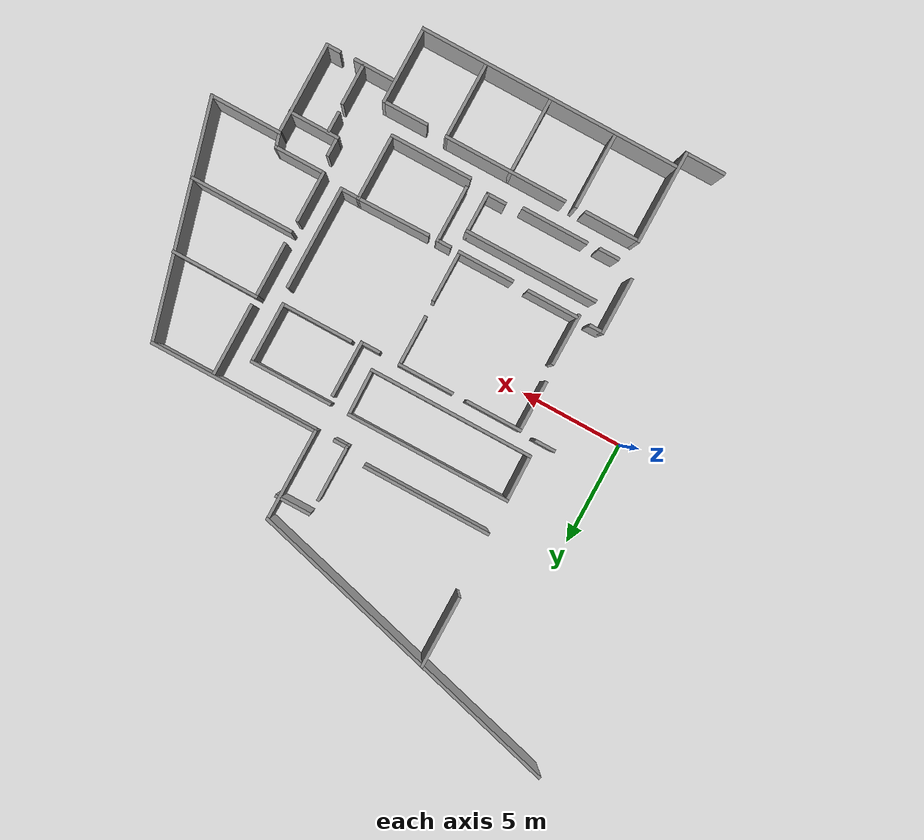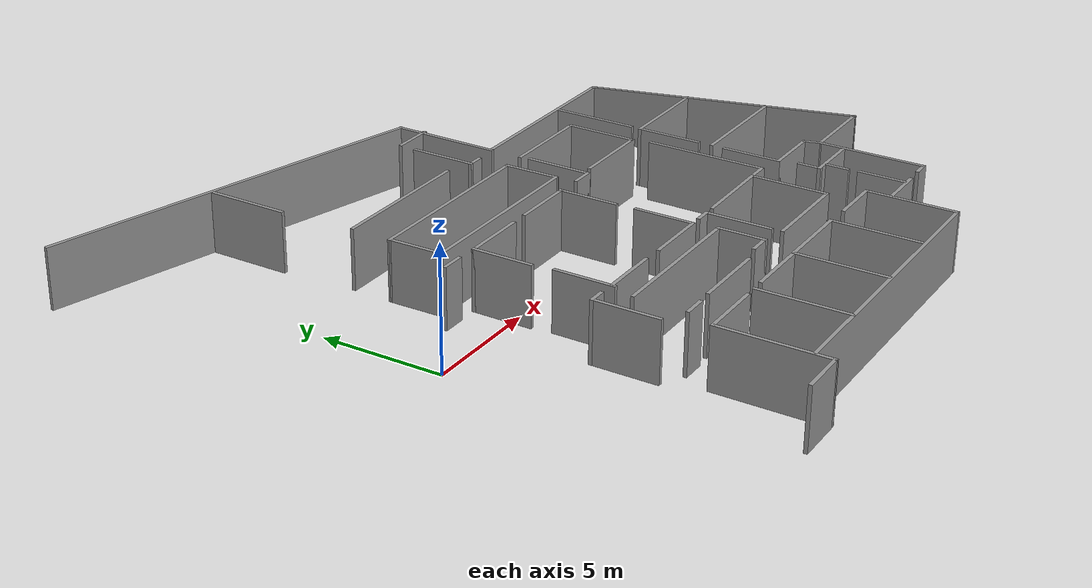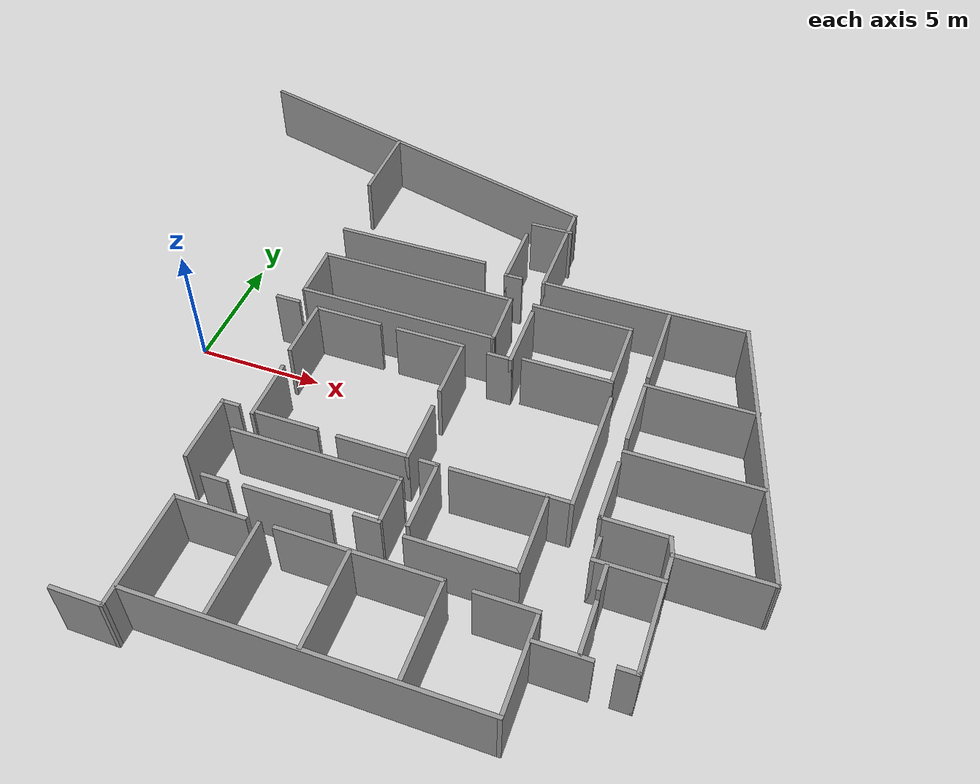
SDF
<sdf version="1.7">
 <model name="DohertyGazeboModel">
  <pose>0.626728 -0.28149 0 0 -0 0</pose>
  <link name="Wall_100">
   <collision name="Wall_100_Collision">
    <geometry><box><size>4.5 0.15 2.5</size></box></geometry>
    <pose>0 0 1.25 0 -0 0</pose>
   </collision>
   <visual name="Wall_100_Visual">
    <pose>0 0 1.25 0 -0 0</pose>
    <geometry><box><size>4.5 0.15 2.5</size></box></geometry>
    <material>
     <script><uri>file://media/materials/scripts/gazebo.material</uri><name>Gazebo/Grey</name></script>
     <ambient>1 1 1 1</ambient>
    </material>
    <meta><layer>0</layer></meta>
   </visual>
   <pose>3.28044 -10.0156 0 0 -0 1.5708</pose>
  </link>
  <link name="Wall_102">
   <collision name="Wall_102_Collision">
    <geometry><box><size>12.75 0.15 2.5</size></box></geometry>
    <pose>0 0 1.25 0 -0 0</pose>
   </collision>
   <visual name="Wall_102_Visual">
    <pose>0 0 1.25 0 -0 0</pose>
    <geometry><box><size>12.75 0.15 2.5</size></box></geometry>
    <material>
     <script><uri>file://media/materials/scripts/gazebo.material</uri><name>Gazebo/Grey</name></script>
     <ambient>1 1 1 1</ambient>
    </material>
    <meta><layer>0</layer></meta>
   </visual>
   <pose>9.66138 -11.4757 0 0 -0 0</pose>
  </link>
  <link name="Wall_103">
   <collision name="Wall_103_Collision">
    <geometry><box><size>3.75 0.15 2.5</size></box></geometry>
    <pose>0 0 1.25 0 -0 0</pose>
   </collision>
   <visual name="Wall_103_Visual">
    <pose>0 0 1.25 0 -0 0</pose>
    <geometry><box><size>3.75 0.15 2.5</size></box></geometry>
    <material>
     <script><uri>file://media/materials/scripts/gazebo.material</uri><name>Gazebo/Grey</name></script>
     <ambient>1 1 1 1</ambient>
    </material>
    <meta><layer>0</layer></meta>
   </visual>
   <pose>15.9614 -9.67571 0 0 -0 1.5708</pose>
  </link>
  <link name="Wall_104">
   <collision name="Wall_104_Collision">
    <geometry><box><size>2.25 0.15 2.5</size></box></geometry>
    <pose>0 0 1.25 0 -0 0</pose>
   </collision>
   <visual name="Wall_104_Visual">
    <pose>0 0 1.25 0 -0 0</pose>
    <geometry><box><size>2.25 0.15 2.5</size></box></geometry>
    <material>
     <script><uri>file://media/materials/scripts/gazebo.material</uri><name>Gazebo/Grey</name></script>
     <ambient>1 1 1 1</ambient>
    </material>
    <meta><layer>0</layer></meta>
   </visual>
   <pose>14.9114 -7.87571 0 0 -0 3.14159</pose>
  </link>
  <link name="Wall_106">
   <collision name="Wall_106_Collision">
    <geometry><box><size>2.75 0.15 2.5</size></box></geometry>
    <pose>0 0 1.25 0 -0 0</pose>
   </collision>
   <visual name="Wall_106_Visual">
    <pose>0 0 1.25 0 -0 0</pose>
    <geometry><box><size>2.75 0.15 2.5</size></box></geometry>
    <material>
     <script><uri>file://media/materials/scripts/gazebo.material</uri><name>Gazebo/Grey</name></script>
     <ambient>1 1 1 1</ambient>
    </material>
    <meta><layer>0</layer></meta>
   </visual>
   <pose>4.58045 -7.84063 0 0 -0 0</pose>
  </link>
  <link name="Wall_108">
   <collision name="Wall_108_Collision">
    <geometry><box><size>3.75 0.15 2.5</size></box></geometry>
    <pose>0 0 1.25 0 -0 0</pose>
   </collision>
   <visual name="Wall_108_Visual">
    <pose>0 0 1.25 0 -0 0</pose>
    <geometry><box><size>3.75 0.15 2.5</size></box></geometry>
    <material>
     <script><uri>file://media/materials/scripts/gazebo.material</uri><name>Gazebo/Grey</name></script>
     <ambient>1 1 1 1</ambient>
    </material>
    <meta><layer>0</layer></meta>
   </visual>
   <pose>6.39368 -9.66583 0 0 -0 -1.5708</pose>
  </link>
  <link name="Wall_110">
   <collision name="Wall_110_Collision">
    <geometry><box><size>6 0.15 2.5</size></box></geometry>
    <pose>0 0 1.25 0 -0 0</pose>
   </collision>
   <visual name="Wall_110_Visual">
    <pose>0 0 1.25 0 -0 0</pose>
    <geometry><box><size>6 0.15 2.5</size></box></geometry>
    <material>
     <script><uri>file://media/materials/scripts/gazebo.material</uri><name>Gazebo/Grey</name></script>
     <ambient>1 1 1 1</ambient>
    </material>
    <meta><layer>0</layer></meta>
   </visual>
   <pose>9.89626 -7.8177 0 0 -0 0</pose>
  </link>
  <link name="Wall_112">
   <collision name="Wall_112_Collision">
    <geometry><box><size>3.75 0.15 2.5</size></box></geometry>
    <pose>0 0 1.25 0 -0 0</pose>
   </collision>
   <visual name="Wall_112_Visual">
    <pose>0 0 1.25 0 -0 0</pose>
    <geometry><box><size>3.75 0.15 2.5</size></box></geometry>
    <material>
     <script><uri>file://media/materials/scripts/gazebo.material</uri><name>Gazebo/Grey</name></script>
     <ambient>1 1 1 1</ambient>
    </material>
    <meta><layer>0</layer></meta>
   </visual>
   <pose>9.61851 -9.6177 0 0 -0 -1.5708</pose>
  </link>
  <link name="Wall_114">
   <collision name="Wall_114_Collision">
    <geometry><box><size>3.75 0.15 2.5</size></box></geometry>
    <pose>0 0 1.25 0 -0 0</pose>
   </collision>
   <visual name="Wall_114_Visual">
    <pose>0 0 1.25 0 -0 0</pose>
    <geometry><box><size>3.75 0.15 2.5</size></box></geometry>
    <material>
     <script><uri>file://media/materials/scripts/gazebo.material</uri><name>Gazebo/Grey</name></script>
     <ambient>1 1 1 1</ambient>
    </material>
    <meta><layer>0</layer></meta>
   </visual>
   <pose>12.8213 -9.6177 0 0 -0 -1.5708</pose>
  </link>
  <link name="Wall_119">
   <collision name="Wall_119_Collision">
    <geometry><box><size>0.75 0.15 2.5</size></box></geometry>
    <pose>0 0 1.25 0 -0 0</pose>
   </collision>
   <visual name="Wall_119_Visual">
    <pose>0 0 1.25 0 -0 0</pose>
    <geometry><box><size>0.75 0.15 2.5</size></box></geometry>
    <material>
     <script><uri>file://media/materials/scripts/gazebo.material</uri><name>Gazebo/Grey</name></script>
     <ambient>1 1 1 1</ambient>
    </material>
    <meta><layer>0</layer></meta>
   </visual>
   <pose>19.0245 -8.83996 0 0 -0 3.14159</pose>
  </link>
  <link name="Wall_121">
   <collision name="Wall_121_Collision">
    <geometry><box><size>2 0.15 2.5</size></box></geometry>
    <pose>0 0 1.25 0 -0 0</pose>
   </collision>
   <visual name="Wall_121_Visual">
    <pose>0 0 1.25 0 -0 0</pose>
    <geometry><box><size>2 0.15 2.5</size></box></geometry>
    <material>
     <script><uri>file://media/materials/scripts/gazebo.material</uri><name>Gazebo/Grey</name></script>
     <ambient>1 1 1 1</ambient>
    </material>
    <meta><layer>0</layer></meta>
   </visual>
   <pose>16.9932 -8.8766 0 0 -0 0</pose>
  </link>
  <link name="Wall_125">
   <collision name="Wall_125_Collision">
    <geometry><box><size>1 0.15 2.5</size></box></geometry>
    <pose>0 0 1.25 0 -0 0</pose>
   </collision>
   <visual name="Wall_125_Visual">
    <pose>0 0 1.25 0 -0 0</pose>
    <geometry><box><size>1 0.15 2.5</size></box></geometry>
    <material>
     <script><uri>file://media/materials/scripts/gazebo.material</uri><name>Gazebo/Grey</name></script>
     <ambient>1 1 1 1</ambient>
    </material>
    <meta><layer>0</layer></meta>
   </visual>
   <pose>17.464 -6.02864 0 0 -0 -1.5708</pose>
  </link>
  <link name="Wall_127">
   <collision name="Wall_127_Collision">
    <geometry><box><size>2 0.15 2.5</size></box></geometry>
    <pose>0 0 1.25 0 -0 0</pose>
   </collision>
   <visual name="Wall_127_Visual">
    <pose>0 0 1.25 0 -0 0</pose>
    <geometry><box><size>2 0.15 2.5</size></box></geometry>
    <material>
     <script><uri>file://media/materials/scripts/gazebo.material</uri><name>Gazebo/Grey</name></script>
     <ambient>1 1 1 1</ambient>
    </material>
    <meta><layer>0</layer></meta>
   </visual>
   <pose>17.5121 -7.87633 0 0 -0 -1.5708</pose>
  </link>
  <link name="Wall_129">
   <collision name="Wall_129_Collision">
    <geometry><box><size>3.5 0.15 2.5</size></box></geometry>
    <pose>0 0 1.25 0 -0 0</pose>
   </collision>
   <visual name="Wall_129_Visual">
    <pose>0 0 1.25 0 -0 0</pose>
    <geometry><box><size>3.5 0.15 2.5</size></box></geometry>
    <material>
     <script><uri>file://media/materials/scripts/gazebo.material</uri><name>Gazebo/Grey</name></script>
     <ambient>1 1 1 1</ambient>
    </material>
    <meta><layer>0</layer></meta>
   </visual>
   <pose>2.70333 11.3169 0 0 -0 -1.5708</pose>
  </link>
  <link name="Wall_133">
   <collision name="Wall_133_Collision">
    <geometry><box><size>1.75 0.15 2.5</size></box></geometry>
    <pose>0 0 1.25 0 -0 0</pose>
   </collision>
   <visual name="Wall_133_Visual">
    <pose>0 0 1.25 0 -0 0</pose>
    <geometry><box><size>1.75 0.15 2.5</size></box></geometry>
    <material>
     <script><uri>file://media/materials/scripts/gazebo.material</uri><name>Gazebo/Grey</name></script>
     <ambient>1 1 1 1</ambient>
    </material>
    <meta><layer>0</layer></meta>
   </visual>
   <pose>11.0274 9.51804 0 0 -0 3.14159</pose>
  </link>
  <link name="Wall_139">
   <collision name="Wall_139_Collision">
    <geometry><box><size>0.75 0.15 2.5</size></box></geometry>
    <pose>0 0 1.25 0 -0 0</pose>
   </collision>
   <visual name="Wall_139_Visual">
    <pose>0 0 1.25 0 -0 0</pose>
    <geometry><box><size>0.75 0.15 2.5</size></box></geometry>
    <material>
     <script><uri>file://media/materials/scripts/gazebo.material</uri><name>Gazebo/Grey</name></script>
     <ambient>1 1 1 1</ambient>
    </material>
    <meta><layer>0</layer></meta>
   </visual>
   <pose>10.4533 6.16974 0 0 -0 0</pose>
  </link>
  <link name="Wall_141">
   <collision name="Wall_141_Collision">
    <geometry><box><size>2.75 0.15 2.5</size></box></geometry>
    <pose>0 0 1.25 0 -0 0</pose>
   </collision>
   <visual name="Wall_141_Visual">
    <pose>0 0 1.25 0 -0 0</pose>
    <geometry><box><size>2.75 0.15 2.5</size></box></geometry>
    <material>
     <script><uri>file://media/materials/scripts/gazebo.material</uri><name>Gazebo/Grey</name></script>
     <ambient>1 1 1 1</ambient>
    </material>
    <meta><layer>0</layer></meta>
   </visual>
   <pose>10.1533 7.46974 0 0 -0 1.5708</pose>
  </link>
  <link name="Wall_153">
   <collision name="Wall_153_Collision">
    <geometry><box><size>6.25 0.15 2.5</size></box></geometry>
    <pose>0 0 1.25 0 -0 0</pose>
   </collision>
   <visual name="Wall_153_Visual">
    <pose>0 0 1.25 0 -0 0</pose>
    <geometry><box><size>6.25 0.15 2.5</size></box></geometry>
    <material>
     <script><uri>file://media/materials/scripts/gazebo.material</uri><name>Gazebo/Grey</name></script>
     <ambient>1 1 1 1</ambient>
    </material>
    <meta><layer>0</layer></meta>
   </visual>
   <pose>6.00445 6.54643 0 0 -0 0</pose>
  </link>
  <link name="Wall_161">
   <collision name="Wall_161_Collision">
    <geometry><box><size>0.75 0.15 2.5</size></box></geometry>
    <pose>0 0 1.25 0 -0 0</pose>
   </collision>
   <visual name="Wall_161_Visual">
    <pose>0 0 1.25 0 -0 0</pose>
    <geometry><box><size>0.75 0.15 2.5</size></box></geometry>
    <material>
     <script><uri>file://media/materials/scripts/gazebo.material</uri><name>Gazebo/Grey</name></script>
     <ambient>1 1 1 1</ambient>
    </material>
    <meta><layer>0</layer></meta>
   </visual>
   <pose>3.04519 -3.58216 0 0 -0 0</pose>
  </link>
  <link name="Wall_166">
   <collision name="Wall_166_Collision">
    <geometry><box><size>2.75 0.15 2.5</size></box></geometry>
    <pose>0 0 1.25 0 -0 0</pose>
   </collision>
   <visual name="Wall_166_Visual">
    <pose>0 0 1.25 0 -0 0</pose>
    <geometry><box><size>2.75 0.15 2.5</size></box></geometry>
    <material>
     <script><uri>file://media/materials/scripts/gazebo.material</uri><name>Gazebo/Grey</name></script>
     <ambient>1 1 1 1</ambient>
    </material>
    <meta><layer>0</layer></meta>
   </visual>
   <pose>2.74519 -4.88216 0 0 -0 -1.5708</pose>
  </link>
  <link name="Wall_169">
   <collision name="Wall_169_Collision">
    <geometry><box><size>1 0.15 2.5</size></box></geometry>
    <pose>0 0 1.25 0 -0 0</pose>
   </collision>
   <visual name="Wall_169_Visual">
    <pose>0 0 1.25 0 -0 0</pose>
    <geometry><box><size>1 0.15 2.5</size></box></geometry>
    <material>
     <script><uri>file://media/materials/scripts/gazebo.material</uri><name>Gazebo/Grey</name></script>
     <ambient>1 1 1 1</ambient>
    </material>
    <meta><layer>0</layer></meta>
   </visual>
   <pose>2.58423 1.97818 0 0 -0 0</pose>
  </link>
  <link name="Wall_171">
   <collision name="Wall_171_Collision">
    <geometry><box><size>2.75 0.15 2.5</size></box></geometry>
    <pose>0 0 1.25 0 -0 0</pose>
   </collision>
   <visual name="Wall_171_Visual">
    <pose>0 0 1.25 0 -0 0</pose>
    <geometry><box><size>2.75 0.15 2.5</size></box></geometry>
    <material>
     <script><uri>file://media/materials/scripts/gazebo.material</uri><name>Gazebo/Grey</name></script>
     <ambient>1 1 1 1</ambient>
    </material>
    <meta><layer>0</layer></meta>
   </visual>
   <pose>5.17523 1.90067 0 0 -0 0</pose>
  </link>
  <link name="Wall_173">
   <collision name="Wall_173_Collision">
    <geometry><box><size>2.75 0.15 2.5</size></box></geometry>
    <pose>0 0 1.25 0 -0 0</pose>
   </collision>
   <visual name="Wall_173_Visual">
    <pose>0 0 1.25 0 -0 0</pose>
    <geometry><box><size>2.75 0.15 2.5</size></box></geometry>
    <material>
     <script><uri>file://media/materials/scripts/gazebo.material</uri><name>Gazebo/Grey</name></script>
     <ambient>1 1 1 1</ambient>
    </material>
    <meta><layer>0</layer></meta>
   </visual>
   <pose>8.56538 1.90067 0 0 -0 0</pose>
  </link>
  <link name="Wall_174">
   <collision name="Wall_174_Collision">
    <geometry><box><size>2.5 0.15 2.5</size></box></geometry>
    <pose>0 0 1.25 0 -0 0</pose>
   </collision>
   <visual name="Wall_174_Visual">
    <pose>0 0 1.25 0 -0 0</pose>
    <geometry><box><size>2.5 0.15 2.5</size></box></geometry>
    <material>
     <script><uri>file://media/materials/scripts/gazebo.material</uri><name>Gazebo/Grey</name></script>
     <ambient>1 1 1 1</ambient>
    </material>
    <meta><layer>0</layer></meta>
   </visual>
   <pose>9.86538 0.72567 0 0 -0 -1.5708</pose>
  </link>
  <link name="Wall_178">
   <collision name="Wall_178_Collision">
    <geometry><box><size>2.5 0.15 2.5</size></box></geometry>
    <pose>0 0 1.25 0 -0 0</pose>
   </collision>
   <visual name="Wall_178_Visual">
    <pose>0 0 1.25 0 -0 0</pose>
    <geometry><box><size>2.5 0.15 2.5</size></box></geometry>
    <material>
     <script><uri>file://media/materials/scripts/gazebo.material</uri><name>Gazebo/Grey</name></script>
     <ambient>1 1 1 1</ambient>
    </material>
    <meta><layer>0</layer></meta>
   </visual>
   <pose>5.2595 -3.62402 0 0 -0 0</pose>
  </link>
  <link name="Wall_180">
   <collision name="Wall_180_Collision">
    <geometry><box><size>2.75 0.15 2.5</size></box></geometry>
    <pose>0 0 1.25 0 -0 0</pose>
   </collision>
   <visual name="Wall_180_Visual">
    <pose>0 0 1.25 0 -0 0</pose>
    <geometry><box><size>2.75 0.15 2.5</size></box></geometry>
    <material>
     <script><uri>file://media/materials/scripts/gazebo.material</uri><name>Gazebo/Grey</name></script>
     <ambient>1 1 1 1</ambient>
    </material>
    <meta><layer>0</layer></meta>
   </visual>
   <pose>8.60724 -3.66587 0 0 -0 0</pose>
  </link>
  <link name="Wall_182">
   <collision name="Wall_182_Collision">
    <geometry><box><size>2.5 0.15 2.5</size></box></geometry>
    <pose>0 0 1.25 0 -0 0</pose>
   </collision>
   <visual name="Wall_182_Visual">
    <pose>0 0 1.25 0 -0 0</pose>
    <geometry><box><size>2.5 0.15 2.5</size></box></geometry>
    <material>
     <script><uri>file://media/materials/scripts/gazebo.material</uri><name>Gazebo/Grey</name></script>
     <ambient>1 1 1 1</ambient>
    </material>
    <meta><layer>0</layer></meta>
   </visual>
   <pose>9.90724 -2.49087 0 0 -0 1.5708</pose>
  </link>
  <link name="Wall_184">
   <collision name="Wall_184_Collision">
    <geometry><box><size>2.5 0.15 2.5</size></box></geometry>
    <pose>0 0 1.25 0 -0 0</pose>
   </collision>
   <visual name="Wall_184_Visual">
    <pose>0 0 1.25 0 -0 0</pose>
    <geometry><box><size>2.5 0.15 2.5</size></box></geometry>
    <material>
     <script><uri>file://media/materials/scripts/gazebo.material</uri><name>Gazebo/Grey</name></script>
     <ambient>1 1 1 1</ambient>
    </material>
    <meta><layer>0</layer></meta>
   </visual>
   <pose>3.87523 0.72567 0 0 -0 -1.5708</pose>
  </link>
  <link name="Wall_186">
   <collision name="Wall_186_Collision">
    <geometry><box><size>2.5 0.15 2.5</size></box></geometry>
    <pose>0 0 1.25 0 -0 0</pose>
   </collision>
   <visual name="Wall_186_Visual">
    <pose>0 0 1.25 0 -0 0</pose>
    <geometry><box><size>2.5 0.15 2.5</size></box></geometry>
    <material>
     <script><uri>file://media/materials/scripts/gazebo.material</uri><name>Gazebo/Grey</name></script>
     <ambient>1 1 1 1</ambient>
    </material>
    <meta><layer>0</layer></meta>
   </visual>
   <pose>4.0008 -2.53892 0 0 -0 -1.5708</pose>
  </link>
  <link name="Wall_188">
   <collision name="Wall_188_Collision">
    <geometry><box><size>2.33411 0.15 2.5</size></box></geometry>
    <pose>0 0 1.25 0 -0 0</pose>
   </collision>
   <visual name="Wall_188_Visual">
    <pose>0 0 1.25 0 -0 0</pose>
    <geometry><box><size>2.33411 0.15 2.5</size></box></geometry>
    <material>
     <script><uri>file://media/materials/scripts/gazebo.material</uri><name>Gazebo/Grey</name></script>
     <ambient>1 1 1 1</ambient>
    </material>
    <meta><layer>0</layer></meta>
   </visual>
   <pose>2.93353 3.78043 0 0 -0 -1.55163</pose>
  </link>
  <link name="Wall_189">
   <collision name="Wall_189_Collision">
    <geometry><box><size>8 0.15 2.5</size></box></geometry>
    <pose>0 0 1.25 0 -0 0</pose>
   </collision>
   <visual name="Wall_189_Visual">
    <pose>0 0 1.25 0 -0 0</pose>
    <geometry><box><size>8 0.15 2.5</size></box></geometry>
    <material>
     <script><uri>file://media/materials/scripts/gazebo.material</uri><name>Gazebo/Grey</name></script>
     <ambient>1 1 1 1</ambient>
    </material>
    <meta><layer>0</layer></meta>
   </visual>
   <pose>6.87945 2.68857 0 0 -0 0</pose>
  </link>
  <link name="Wall_190">
   <collision name="Wall_190_Collision">
    <geometry><box><size>2.33411 0.15 2.5</size></box></geometry>
    <pose>0 0 1.25 0 -0 0</pose>
   </collision>
   <visual name="Wall_190_Visual">
    <pose>0 0 1.25 0 -0 0</pose>
    <geometry><box><size>2.33411 0.15 2.5</size></box></geometry>
    <material>
     <script><uri>file://media/materials/scripts/gazebo.material</uri><name>Gazebo/Grey</name></script>
     <ambient>1 1 1 1</ambient>
    </material>
    <meta><layer>0</layer></meta>
   </visual>
   <pose>10.7835 3.78043 0 0 -0 1.58996</pose>
  </link>
  <link name="Wall_191">
   <collision name="Wall_191_Collision">
    <geometry><box><size>8 0.15 2.5</size></box></geometry>
    <pose>0 0 1.25 0 -0 0</pose>
   </collision>
   <visual name="Wall_191_Visual">
    <pose>0 0 1.25 0 -0 0</pose>
    <geometry><box><size>8 0.15 2.5</size></box></geometry>
    <material>
     <script><uri>file://media/materials/scripts/gazebo.material</uri><name>Gazebo/Grey</name></script>
     <ambient>1 1 1 1</ambient>
    </material>
    <meta><layer>0</layer></meta>
   </visual>
   <pose>6.8376 4.87228 0 0 -0 3.14159</pose>
  </link>
  <link name="Wall_193">
   <collision name="Wall_193_Collision">
    <geometry><box><size>4 0.15 2.5</size></box></geometry>
    <pose>0 0 1.25 0 -0 0</pose>
   </collision>
   <visual name="Wall_193_Visual">
    <pose>0 0 1.25 0 -0 0</pose>
    <geometry><box><size>4 0.15 2.5</size></box></geometry>
    <material>
     <script><uri>file://media/materials/scripts/gazebo.material</uri><name>Gazebo/Grey</name></script>
     <ambient>1 1 1 1</ambient>
    </material>
    <meta><layer>0</layer></meta>
   </visual>
   <pose>13.6687 4.87228 0 0 -0 0</pose>
  </link>
  <link name="Wall_194">
   <collision name="Wall_194_Collision">
    <geometry><box><size>3 0.15 2.5</size></box></geometry>
    <pose>0 0 1.25 0 -0 0</pose>
   </collision>
   <visual name="Wall_194_Visual">
    <pose>0 0 1.25 0 -0 0</pose>
    <geometry><box><size>3 0.15 2.5</size></box></geometry>
    <material>
     <script><uri>file://media/materials/scripts/gazebo.material</uri><name>Gazebo/Grey</name></script>
     <ambient>1 1 1 1</ambient>
    </material>
    <meta><layer>0</layer></meta>
   </visual>
   <pose>15.5937 3.44728 0 0 -0 -1.5708</pose>
  </link>
  <link name="Wall_195">
   <collision name="Wall_195_Collision">
    <geometry><box><size>3.5 0.15 2.5</size></box></geometry>
    <pose>0 0 1.25 0 -0 0</pose>
   </collision>
   <visual name="Wall_195_Visual">
    <pose>0 0 1.25 0 -0 0</pose>
    <geometry><box><size>3.5 0.15 2.5</size></box></geometry>
    <material>
     <script><uri>file://media/materials/scripts/gazebo.material</uri><name>Gazebo/Grey</name></script>
     <ambient>1 1 1 1</ambient>
    </material>
    <meta><layer>0</layer></meta>
   </visual>
   <pose>13.9187 2.02228 0 0 -0 3.14159</pose>
  </link>
  <link name="Wall_197">
   <collision name="Wall_197_Collision">
    <geometry><box><size>2.75 0.15 2.5</size></box></geometry>
    <pose>0 0 1.25 0 -0 0</pose>
   </collision>
   <visual name="Wall_197_Visual">
    <pose>0 0 1.25 0 -0 0</pose>
    <geometry><box><size>2.75 0.15 2.5</size></box></geometry>
    <material>
     <script><uri>file://media/materials/scripts/gazebo.material</uri><name>Gazebo/Grey</name></script>
     <ambient>1 1 1 1</ambient>
    </material>
    <meta><layer>0</layer></meta>
   </visual>
   <pose>11.7856 3.15374 0 0 -0 -1.5708</pose>
  </link>
  <link name="Wall_198">
   <collision name="Wall_198_Collision">
    <geometry><box><size>1 0.15 2.5</size></box></geometry>
    <pose>0 0 1.25 0 -0 0</pose>
   </collision>
   <visual name="Wall_198_Visual">
    <pose>0 0 1.25 0 -0 0</pose>
    <geometry><box><size>1 0.15 2.5</size></box></geometry>
    <material>
     <script><uri>file://media/materials/scripts/gazebo.material</uri><name>Gazebo/Grey</name></script>
     <ambient>1 1 1 1</ambient>
    </material>
    <meta><layer>0</layer></meta>
   </visual>
   <pose>11.3606 1.85374 0 0 -0 3.14159</pose>
  </link>
  <link name="Wall_200">
   <collision name="Wall_200_Collision">
    <geometry><box><size>0.75 0.15 2.5</size></box></geometry>
    <pose>0 0 1.25 0 -0 0</pose>
   </collision>
   <visual name="Wall_200_Visual">
    <pose>0 0 1.25 0 -0 0</pose>
    <geometry><box><size>0.75 0.15 2.5</size></box></geometry>
    <material>
     <script><uri>file://media/materials/scripts/gazebo.material</uri><name>Gazebo/Grey</name></script>
     <ambient>1 1 1 1</ambient>
    </material>
    <meta><layer>0</layer></meta>
   </visual>
   <pose>10.7044 -3.66587 0 0 -0 0</pose>
  </link>
  <link name="Wall_201">
   <collision name="Wall_201_Collision">
    <geometry><box><size>2.75 0.15 2.5</size></box></geometry>
    <pose>0 0 1.25 0 -0 0</pose>
   </collision>
   <visual name="Wall_201_Visual">
    <pose>0 0 1.25 0 -0 0</pose>
    <geometry><box><size>2.75 0.15 2.5</size></box></geometry>
    <material>
     <script><uri>file://media/materials/scripts/gazebo.material</uri><name>Gazebo/Grey</name></script>
     <ambient>1 1 1 1</ambient>
    </material>
    <meta><layer>0</layer></meta>
   </visual>
   <pose>11.0044 -4.96587 0 0 -0 -1.5708</pose>
  </link>
  <link name="Wall_203">
   <collision name="Wall_203_Collision">
    <geometry><box><size>4 0.15 2.5</size></box></geometry>
    <pose>0 0 1.25 0 -0 0</pose>
   </collision>
   <visual name="Wall_203_Visual">
    <pose>0 0 1.25 0 -0 0</pose>
    <geometry><box><size>4 0.15 2.5</size></box></geometry>
    <material>
     <script><uri>file://media/materials/scripts/gazebo.material</uri><name>Gazebo/Grey</name></script>
     <ambient>1 1 1 1</ambient>
    </material>
    <meta><layer>0</layer></meta>
   </visual>
   <pose>12.9991 -6.72119 0 0 -0 0</pose>
  </link>
  <link name="Wall_204">
   <collision name="Wall_204_Collision">
    <geometry><box><size>3.25 0.15 2.5</size></box></geometry>
    <pose>0 0 1.25 0 -0 0</pose>
   </collision>
   <visual name="Wall_204_Visual">
    <pose>0 0 1.25 0 -0 0</pose>
    <geometry><box><size>3.25 0.15 2.5</size></box></geometry>
    <material>
     <script><uri>file://media/materials/scripts/gazebo.material</uri><name>Gazebo/Grey</name></script>
     <ambient>1 1 1 1</ambient>
    </material>
    <meta><layer>0</layer></meta>
   </visual>
   <pose>14.9241 -5.17119 0 0 -0 1.5708</pose>
  </link>
  <link name="Wall_205">
   <collision name="Wall_205_Collision">
    <geometry><box><size>1 0.15 2.5</size></box></geometry>
    <pose>0 0 1.25 0 -0 0</pose>
   </collision>
   <visual name="Wall_205_Visual">
    <pose>0 0 1.25 0 -0 0</pose>
    <geometry><box><size>1 0.15 2.5</size></box></geometry>
    <material>
     <script><uri>file://media/materials/scripts/gazebo.material</uri><name>Gazebo/Grey</name></script>
     <ambient>1 1 1 1</ambient>
    </material>
    <meta><layer>0</layer></meta>
   </visual>
   <pose>15.3491 -3.62119 0 0 -0 0</pose>
  </link>
  <link name="Wall_206">
   <collision name="Wall_206_Collision">
    <geometry><box><size>5 0.15 2.5</size></box></geometry>
    <pose>0 0 1.25 0 -0 0</pose>
   </collision>
   <visual name="Wall_206_Visual">
    <pose>0 0 1.25 0 -0 0</pose>
    <geometry><box><size>5 0.15 2.5</size></box></geometry>
    <material>
     <script><uri>file://media/materials/scripts/gazebo.material</uri><name>Gazebo/Grey</name></script>
     <ambient>1 1 1 1</ambient>
    </material>
    <meta><layer>0</layer></meta>
   </visual>
   <pose>15.7741 -1.19619 0 0 -0 1.5708</pose>
  </link>
  <link name="Wall_208">
   <collision name="Wall_208_Collision">
    <geometry><box><size>3.58175 0.15 2.5</size></box></geometry>
    <pose>0 0 1.25 0 -0 0</pose>
   </collision>
   <visual name="Wall_208_Visual">
    <pose>0 0 1.25 0 -0 0</pose>
    <geometry><box><size>3.58175 0.15 2.5</size></box></geometry>
    <material>
     <script><uri>file://media/materials/scripts/gazebo.material</uri><name>Gazebo/Grey</name></script>
     <ambient>1 1 1 1</ambient>
    </material>
    <meta><layer>0</layer></meta>
   </visual>
   <pose>13.2083 -3.64353 0 0 -0 0.01302</pose>
  </link>
  <link name="Wall_210">
   <collision name="Wall_210_Collision">
    <geometry><box><size>6.5 0.15 2.5</size></box></geometry>
    <pose>0 0 1.25 0 -0 0</pose>
   </collision>
   <visual name="Wall_210_Visual">
    <pose>0 0 1.25 0 -0 0</pose>
    <geometry><box><size>6.5 0.15 2.5</size></box></geometry>
    <material>
     <script><uri>file://media/materials/scripts/gazebo.material</uri><name>Gazebo/Grey</name></script>
     <ambient>1 1 1 1</ambient>
    </material>
    <meta><layer>0</layer></meta>
   </visual>
   <pose>6.88282 -4.6285 0 0 -0 0</pose>
  </link>
  <link name="Wall_211">
   <collision name="Wall_211_Collision">
    <geometry><box><size>2 0.15 2.5</size></box></geometry>
    <pose>0 0 1.25 0 -0 0</pose>
   </collision>
   <visual name="Wall_211_Visual">
    <pose>0 0 1.25 0 -0 0</pose>
    <geometry><box><size>2 0.15 2.5</size></box></geometry>
    <material>
     <script><uri>file://media/materials/scripts/gazebo.material</uri><name>Gazebo/Grey</name></script>
     <ambient>1 1 1 1</ambient>
    </material>
    <meta><layer>0</layer></meta>
   </visual>
   <pose>10.0578 -5.5535 0 0 -0 -1.5708</pose>
  </link>
  <link name="Wall_212">
   <collision name="Wall_212_Collision">
    <geometry><box><size>1 0.15 2.5</size></box></geometry>
    <pose>0 0 1.25 0 -0 0</pose>
   </collision>
   <visual name="Wall_212_Visual">
    <pose>0 0 1.25 0 -0 0</pose>
    <geometry><box><size>1 0.15 2.5</size></box></geometry>
    <material>
     <script><uri>file://media/materials/scripts/gazebo.material</uri><name>Gazebo/Grey</name></script>
     <ambient>1 1 1 1</ambient>
    </material>
    <meta><layer>0</layer></meta>
   </visual>
   <pose>9.63282 -6.4785 0 0 -0 3.14159</pose>
  </link>
  <link name="Wall_214">
   <collision name="Wall_214_Collision">
    <geometry><box><size>1 0.15 2.5</size></box></geometry>
    <pose>0 0 1.25 0 -0 0</pose>
   </collision>
   <visual name="Wall_214_Visual">
    <pose>0 0 1.25 0 -0 0</pose>
    <geometry><box><size>1 0.15 2.5</size></box></geometry>
    <material>
     <script><uri>file://media/materials/scripts/gazebo.material</uri><name>Gazebo/Grey</name></script>
     <ambient>1 1 1 1</ambient>
    </material>
    <meta><layer>0</layer></meta>
   </visual>
   <pose>4.13282 -6.72119 0 0 -0 0</pose>
  </link>
  <link name="Wall_216">
   <collision name="Wall_216_Collision">
    <geometry><box><size>3.25 0.15 2.5</size></box></geometry>
    <pose>0 0 1.25 0 -0 0</pose>
   </collision>
   <visual name="Wall_216_Visual">
    <pose>0 0 1.25 0 -0 0</pose>
    <geometry><box><size>3.25 0.15 2.5</size></box></geometry>
    <material>
     <script><uri>file://media/materials/scripts/gazebo.material</uri><name>Gazebo/Grey</name></script>
     <ambient>1 1 1 1</ambient>
    </material>
    <meta><layer>0</layer></meta>
   </visual>
   <pose>6.80641 -6.67934 0 0 -0 0</pose>
  </link>
  <link name="Wall_3">
   <collision name="Wall_3_Collision">
    <geometry><box><size>16.5 0.15 2.5</size></box></geometry>
    <pose>0 0 1.25 0 -0 0</pose>
   </collision>
   <visual name="Wall_3_Visual">
    <pose>0 0 1.25 0 -0 0</pose>
    <geometry><box><size>16.5 0.15 2.5</size></box></geometry>
    <material>
     <script><uri>file://media/materials/scripts/gazebo.material</uri><name>Gazebo/Grey</name></script>
     <ambient>1 1 1 1</ambient>
    </material>
    <meta><layer>0</layer></meta>
   </visual>
   <pose>3.80513 12.6977 0 0 -0 -0.261799</pose>
  </link>
  <link name="Wall_4">
   <collision name="Wall_4_Collision">
    <geometry><box><size>4.5 0.15 2.5</size></box></geometry>
    <pose>0 0 1.25 0 -0 0</pose>
   </collision>
   <visual name="Wall_4_Visual">
    <pose>0 0 1.25 0 -0 0</pose>
    <geometry><box><size>4.5 0.15 2.5</size></box></geometry>
    <material>
     <script><uri>file://media/materials/scripts/gazebo.material</uri><name>Gazebo/Grey</name></script>
     <ambient>1 1 1 1</ambient>
    </material>
    <meta><layer>0</layer></meta>
   </visual>
   <pose>11.7016 8.40681 0 0 -0 -1.5708</pose>
  </link>
  <link name="Wall_43">
   <collision name="Wall_43_Collision">
    <geometry><box><size>3.5 0.15 2.5</size></box></geometry>
    <pose>0 0 1.25 0 -0 0</pose>
   </collision>
   <visual name="Wall_43_Visual">
    <pose>0 0 1.25 0 -0 0</pose>
    <geometry><box><size>3.5 0.15 2.5</size></box></geometry>
    <material>
     <script><uri>file://media/materials/scripts/gazebo.material</uri><name>Gazebo/Grey</name></script>
     <ambient>1 1 1 1</ambient>
    </material>
    <meta><layer>0</layer></meta>
   </visual>
   <pose>16.7901 4.41737 0 0 -0 -1.5708</pose>
  </link>
  <link name="Wall_45">
   <collision name="Wall_45_Collision">
    <geometry><box><size>4.25 0.15 2.5</size></box></geometry>
    <pose>0 0 1.25 0 -0 0</pose>
   </collision>
   <visual name="Wall_45_Visual">
    <pose>0 0 1.25 0 -0 0</pose>
    <geometry><box><size>4.25 0.15 2.5</size></box></geometry>
    <material>
     <script><uri>file://media/materials/scripts/gazebo.material</uri><name>Gazebo/Grey</name></script>
     <ambient>1 1 1 1</ambient>
    </material>
    <meta><layer>0</layer></meta>
   </visual>
   <pose>18.8401 2.28996 0 0 -0 0</pose>
  </link>
  <link name="Wall_47">
   <collision name="Wall_47_Collision">
    <geometry><box><size>2.75 0.15 2.5</size></box></geometry>
    <pose>0 0 1.25 0 -0 0</pose>
   </collision>
   <visual name="Wall_47_Visual">
    <pose>0 0 1.25 0 -0 0</pose>
    <geometry><box><size>2.75 0.15 2.5</size></box></geometry>
    <material>
     <script><uri>file://media/materials/scripts/gazebo.material</uri><name>Gazebo/Grey</name></script>
     <ambient>1 1 1 1</ambient>
    </material>
    <meta><layer>0</layer></meta>
   </visual>
   <pose>16.7901 0.989964 0 0 -0 -1.5708</pose>
  </link>
  <link name="Wall_49">
   <collision name="Wall_49_Collision">
    <geometry><box><size>5 0.15 2.5</size></box></geometry>
    <pose>0 0 1.25 0 -0 0</pose>
   </collision>
   <visual name="Wall_49_Visual">
    <pose>0 0 1.25 0 -0 0</pose>
    <geometry><box><size>5 0.15 2.5</size></box></geometry>
    <material>
     <script><uri>file://media/materials/scripts/gazebo.material</uri><name>Gazebo/Grey</name></script>
     <ambient>1 1 1 1</ambient>
    </material>
    <meta><layer>0</layer></meta>
   </visual>
   <pose>19.2633 -0.934862 0 0 -0 0</pose>
  </link>
  <link name="Wall_5">
   <collision name="Wall_5_Collision">
    <geometry><box><size>8.25 0.15 2.5</size></box></geometry>
    <pose>0 0 1.25 0 -0 0</pose>
   </collision>
   <visual name="Wall_5_Visual">
    <pose>0 0 1.25 0 -0 0</pose>
    <geometry><box><size>8.25 0.15 2.5</size></box></geometry>
    <material>
     <script><uri>file://media/materials/scripts/gazebo.material</uri><name>Gazebo/Grey</name></script>
     <ambient>1 1 1 1</ambient>
    </material>
    <meta><layer>0</layer></meta>
   </visual>
   <pose>15.7516 6.23181 0 0 -0 0</pose>
  </link>
  <link name="Wall_51">
   <collision name="Wall_51_Collision">
    <geometry><box><size>2.5 0.15 2.5</size></box></geometry>
    <pose>0 0 1.25 0 -0 0</pose>
   </collision>
   <visual name="Wall_51_Visual">
    <pose>0 0 1.25 0 -0 0</pose>
    <geometry><box><size>2.5 0.15 2.5</size></box></geometry>
    <material>
     <script><uri>file://media/materials/scripts/gazebo.material</uri><name>Gazebo/Grey</name></script>
     <ambient>1 1 1 1</ambient>
    </material>
    <meta><layer>0</layer></meta>
   </visual>
   <pose>16.7901 -2.68744 0 0 -0 -1.5708</pose>
  </link>
  <link name="Wall_52">
   <collision name="Wall_52_Collision">
    <geometry><box><size>2.5 0.15 2.5</size></box></geometry>
    <pose>0 0 1.25 0 -0 0</pose>
   </collision>
   <visual name="Wall_52_Visual">
    <pose>0 0 1.25 0 -0 0</pose>
    <geometry><box><size>2.5 0.15 2.5</size></box></geometry>
    <material>
     <script><uri>file://media/materials/scripts/gazebo.material</uri><name>Gazebo/Grey</name></script>
     <ambient>1 1 1 1</ambient>
    </material>
    <meta><layer>0</layer></meta>
   </visual>
   <pose>17.9651 -3.86244 0 0 -0 0</pose>
  </link>
  <link name="Wall_53">
   <collision name="Wall_53_Collision">
    <geometry><box><size>0.804033 0.15 2.5</size></box></geometry>
    <pose>0 0 1.25 0 -0 0</pose>
   </collision>
   <visual name="Wall_53_Visual">
    <pose>0 0 1.25 0 -0 0</pose>
    <geometry><box><size>0.804033 0.15 2.5</size></box></geometry>
    <material>
     <script><uri>file://media/materials/scripts/gazebo.material</uri><name>Gazebo/Grey</name></script>
     <ambient>1 1 1 1</ambient>
    </material>
    <meta><layer>0</layer></meta>
   </visual>
   <pose>19.2323 -4.1762 0 0 -0 -1.28509</pose>
  </link>
  <link name="Wall_58">
   <collision name="Wall_58_Collision">
    <geometry><box><size>2.5 0.15 2.5</size></box></geometry>
    <pose>0 0 1.25 0 -0 0</pose>
   </collision>
   <visual name="Wall_58_Visual">
    <pose>0 0 1.25 0 -0 0</pose>
    <geometry><box><size>2.5 0.15 2.5</size></box></geometry>
    <material>
     <script><uri>file://media/materials/scripts/gazebo.material</uri><name>Gazebo/Grey</name></script>
     <ambient>1 1 1 1</ambient>
    </material>
    <meta><layer>0</layer></meta>
   </visual>
   <pose>18.1661 -5.50738 0 0 -0 3.14159</pose>
  </link>
  <link name="Wall_59">
   <collision name="Wall_59_Collision">
    <geometry><box><size>1 0.15 2.5</size></box></geometry>
    <pose>0 0 1.25 0 -0 0</pose>
   </collision>
   <visual name="Wall_59_Visual">
    <pose>0 0 1.25 0 -0 0</pose>
    <geometry><box><size>1 0.15 2.5</size></box></geometry>
    <material>
     <script><uri>file://media/materials/scripts/gazebo.material</uri><name>Gazebo/Grey</name></script>
     <ambient>1 1 1 1</ambient>
    </material>
    <meta><layer>0</layer></meta>
   </visual>
   <pose>16.9911 -5.08238 0 0 -0 1.5708</pose>
  </link>
  <link name="Wall_6">
   <collision name="Wall_6_Collision">
    <geometry><box><size>11.25 0.15 2.5</size></box></geometry>
    <pose>0 0 1.25 0 -0 0</pose>
   </collision>
   <visual name="Wall_6_Visual">
    <pose>0 0 1.25 0 -0 0</pose>
    <geometry><box><size>11.25 0.15 2.5</size></box></geometry>
    <material>
     <script><uri>file://media/materials/scripts/gazebo.material</uri><name>Gazebo/Grey</name></script>
     <ambient>1 1 1 1</ambient>
    </material>
    <meta><layer>0</layer></meta>
   </visual>
   <pose>21.238 0.870924 0 0 -0 -1.309</pose>
  </link>
  <link name="Wall_7">
   <collision name="Wall_7_Collision">
    <geometry><box><size>3.5 0.15 2.5</size></box></geometry>
    <pose>0 0 1.25 0 -0 0</pose>
   </collision>
   <visual name="Wall_7_Visual">
    <pose>0 0 1.25 0 -0 0</pose>
    <geometry><box><size>3.5 0.15 2.5</size></box></geometry>
    <material>
     <script><uri>file://media/materials/scripts/gazebo.material</uri><name>Gazebo/Grey</name></script>
     <ambient>1 1 1 1</ambient>
    </material>
    <meta><layer>0</layer></meta>
   </visual>
   <pose>20.9995 -4.48996 0 0 -0 3.14159</pose>
  </link>
  <link name="Wall_8">
   <collision name="Wall_8_Collision">
    <geometry><box><size>4.5 0.15 2.5</size></box></geometry>
    <pose>0 0 1.25 0 -0 0</pose>
   </collision>
   <visual name="Wall_8_Visual">
    <pose>0 0 1.25 0 -0 0</pose>
    <geometry><box><size>4.5 0.15 2.5</size></box></geometry>
    <material>
     <script><uri>file://media/materials/scripts/gazebo.material</uri><name>Gazebo/Grey</name></script>
     <ambient>1 1 1 1</ambient>
    </material>
    <meta><layer>0</layer></meta>
   </visual>
   <pose>19.3245 -6.66496 0 0 -0 -1.5708</pose>
  </link>
  <link name="Wall_99">
   <collision name="Wall_99_Collision">
    <geometry><box><size>2 0.15 2.5</size></box></geometry>
    <pose>0 0 1.25 0 -0 0</pose>
   </collision>
   <visual name="Wall_99_Visual">
    <pose>0 0 1.25 0 -0 0</pose>
    <geometry><box><size>2 0.15 2.5</size></box></geometry>
    <material>
     <script><uri>file://media/materials/scripts/gazebo.material</uri><name>Gazebo/Grey</name></script>
     <ambient>1 1 1 1</ambient>
    </material>
    <meta><layer>0</layer></meta>
   </visual>
   <pose>2.35545 -12.1906 0 0 -0 0</pose>
  </link>
  <static>1</static>
 </model>
</sdf>
